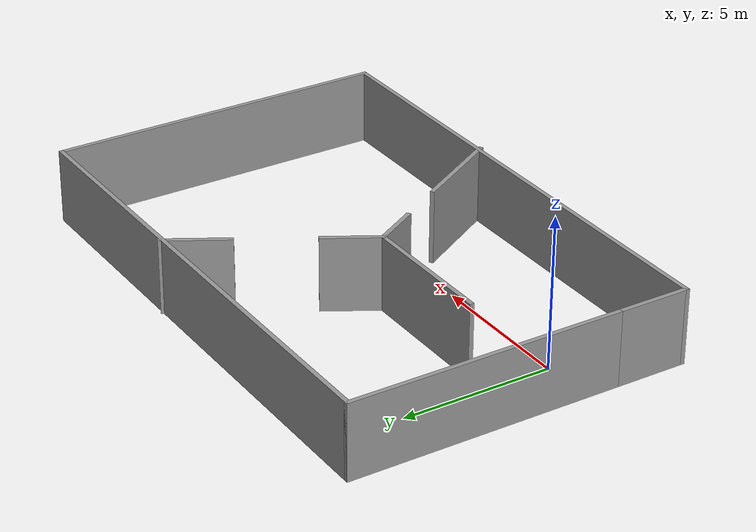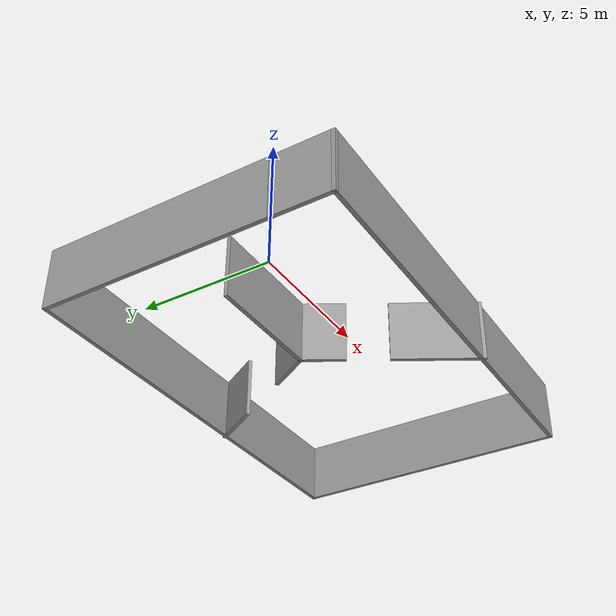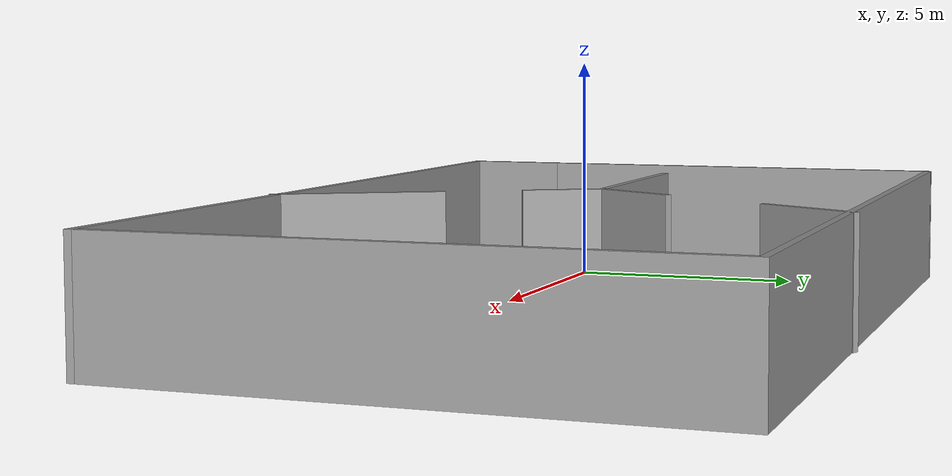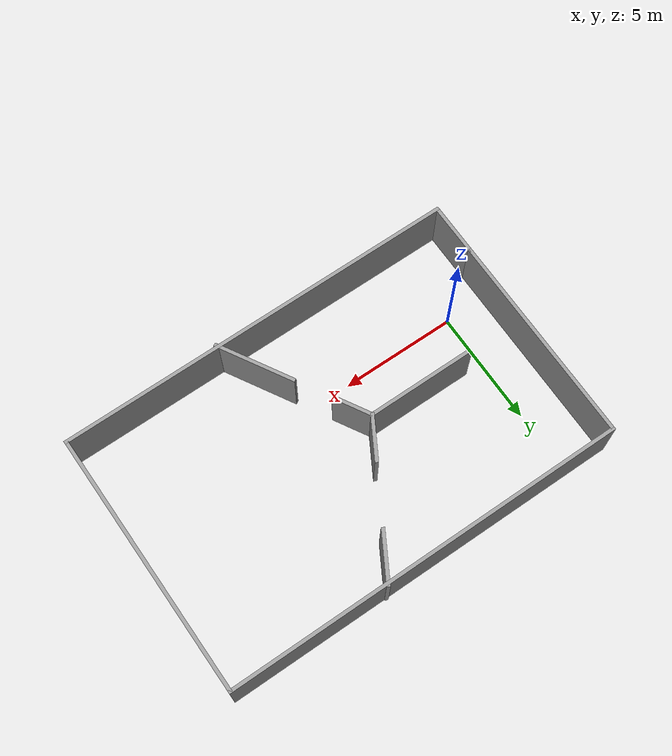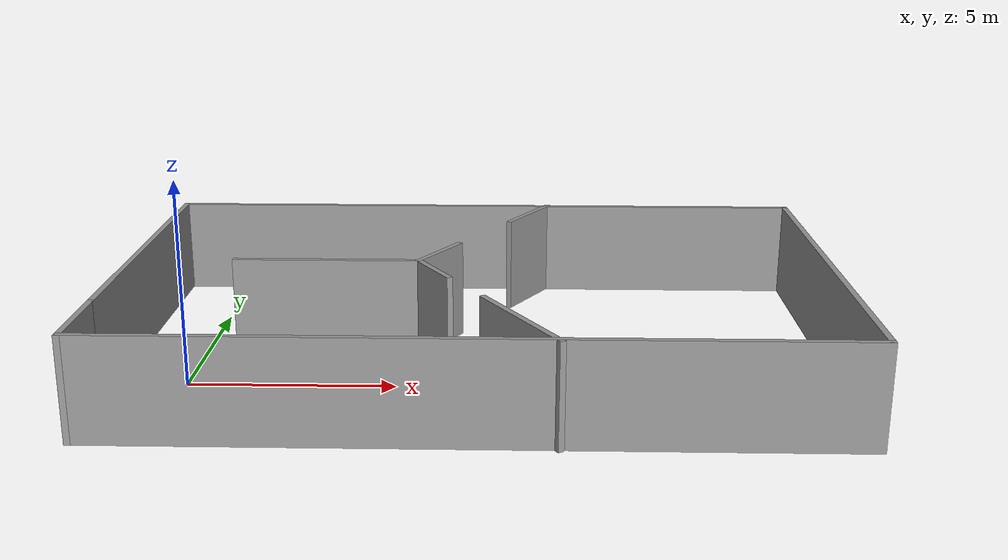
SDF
<?xml version='1.0'?>
<sdf version='1.6'>
  <model name='walls'>
    <pose frame=''>6.91274 2.20255 0 0 -0 0</pose>
    <link name='Wall_0'>
      <collision name='Wall_0_Collision'>
        <geometry>
          <box>
            <size>9.25 0.15 2.5</size>
          </box>
        </geometry>
        <pose frame=''>0 0 1.25 0 -0 0</pose>
      </collision>
      <visual name='Wall_0_Visual'>
        <pose frame=''>0 0 1.25 0 -0 0</pose>
        <geometry>
          <box>
            <size>9.25 0.15 2.5</size>
          </box>
        </geometry>
        <material>
          <script>
            <uri>file://media/materials/scripts/gazebo.material</uri>
            <name>Gazebo/Grey</name>
          </script>
          <ambient>1 1 1 1</ambient>
        </material>
        <meta>
          <layer>0</layer>
        </meta>
      </visual>
      <pose frame=''>-8.675 1.14311 0 0 -0 1.5708</pose>
    </link>
    <link name='Wall_1'>
      <collision name='Wall_1_Collision'>
        <geometry>
          <box>
            <size>17.5 0.15 2.5</size>
          </box>
        </geometry>
        <pose frame=''>0 0 1.25 0 -0 0</pose>
      </collision>
      <visual name='Wall_1_Visual'>
        <pose frame=''>0 0 1.25 0 -0 0</pose>
        <geometry>
          <box>
            <size>17.5 0.15 2.5</size>
          </box>
        </geometry>
        <material>
          <script>
            <uri>file://media/materials/scripts/gazebo.material</uri>
            <name>Gazebo/Grey</name>
          </script>
          <ambient>1 1 1 1</ambient>
        </material>
        <meta>
          <layer>0</layer>
        </meta>
      </visual>
      <pose frame=''>-0 5.69311 0 0 -0 0</pose>
    </link>
    <link name='Wall_11'>
      <collision name='Wall_11_Collision'>
        <geometry>
          <box>
            <size>1.75 0.15 2.5</size>
          </box>
        </geometry>
        <pose frame=''>0 0 1.25 0 -0 0</pose>
      </collision>
      <visual name='Wall_11_Visual'>
        <pose frame=''>0 0 1.25 0 -0 0</pose>
        <geometry>
          <box>
            <size>1.75 0.15 2.5</size>
          </box>
        </geometry>
        <material>
          <script>
            <uri>file://media/materials/scripts/gazebo.material</uri>
            <name>Gazebo/Grey</name>
          </script>
          <ambient>1 1 1 1</ambient>
        </material>
        <meta>
          <layer>0</layer>
        </meta>
      </visual>
      <pose frame=''>-1.08819 -0.668295 0 0 -0 -1.0472</pose>
    </link>
    <link name='Wall_17'>
      <collision name='Wall_17_Collision'>
        <geometry>
          <box>
            <size>3.5 0.15 2.5</size>
          </box>
        </geometry>
        <pose frame=''>0 0 1.25 0 -0 0</pose>
      </collision>
      <visual name='Wall_17_Visual'>
        <pose frame=''>0 0 1.25 0 -0 0</pose>
        <geometry>
          <box>
            <size>3.5 0.15 2.5</size>
          </box>
        </geometry>
        <material>
          <script>
            <uri>file://media/materials/scripts/gazebo.material</uri>
            <name>Gazebo/Grey</name>
          </script>
          <ambient>1 1 1 1</ambient>
        </material>
        <meta>
          <layer>0</layer>
        </meta>
      </visual>
      <pose frame=''>1.0238 -4.30255 0 0 -0 -1.0472</pose>
    </link>
    <link name='Wall_2'>
      <collision name='Wall_2_Collision'>
        <geometry>
          <box>
            <size>11.5 0.15 2.5</size>
          </box>
        </geometry>
        <pose frame=''>0 0 1.25 0 -0 0</pose>
      </collision>
      <visual name='Wall_2_Visual'>
        <pose frame=''>0 0 1.25 0 -0 0</pose>
        <geometry>
          <box>
            <size>11.5 0.15 2.5</size>
          </box>
        </geometry>
        <material>
          <script>
            <uri>file://media/materials/scripts/gazebo.material</uri>
            <name>Gazebo/Grey</name>
          </script>
          <ambient>1 1 1 1</ambient>
        </material>
        <meta>
          <layer>0</layer>
        </meta>
      </visual>
      <pose frame=''>8.675 0.018105 0 0 -0 -1.5708</pose>
    </link>
    <link name='Wall_3'>
      <collision name='Wall_3_Collision'>
        <geometry>
          <box>
            <size>17.5 0.15 2.5</size>
          </box>
        </geometry>
        <pose frame=''>0 0 1.25 0 -0 0</pose>
      </collision>
      <visual name='Wall_3_Visual'>
        <pose frame=''>0 0 1.25 0 -0 0</pose>
        <geometry>
          <box>
            <size>17.5 0.15 2.5</size>
          </box>
        </geometry>
        <material>
          <script>
            <uri>file://media/materials/scripts/gazebo.material</uri>
            <name>Gazebo/Grey</name>
          </script>
          <ambient>1 1 1 1</ambient>
        </material>
        <meta>
          <layer>0</layer>
        </meta>
      </visual>
      <pose frame=''>-0 -5.65689 0 0 -0 3.14159</pose>
    </link>
    <link name='Wall_4'>
      <collision name='Wall_4_Collision'>
        <geometry>
          <box>
            <size>2.4 0.15 2.5</size>
          </box>
        </geometry>
        <pose frame=''>0 0 1.25 0 -0 0</pose>
      </collision>
      <visual name='Wall_4_Visual'>
        <pose frame=''>0 0 1.25 0 -0 0</pose>
        <geometry>
          <box>
            <size>2.4 0.15 2.5</size>
          </box>
        </geometry>
        <material>
          <script>
            <uri>file://media/materials/scripts/gazebo.material</uri>
            <name>Gazebo/Grey</name>
          </script>
          <ambient>1 1 1 1</ambient>
        </material>
        <meta>
          <layer>0</layer>
        </meta>
      </visual>
      <pose frame=''>-8.675 -4.53189 0 0 -0 1.5708</pose>
    </link>
    <link name='Wall_6'>
      <collision name='Wall_6_Collision'>
        <geometry>
          <box>
            <size>2.25 0.15 2.5</size>
          </box>
        </geometry>
        <pose frame=''>0 0 1.25 0 -0 0</pose>
      </collision>
      <visual name='Wall_6_Visual'>
        <pose frame=''>0 0 1.25 0 -0 0</pose>
        <geometry>
          <box>
            <size>2.25 0.15 2.5</size>
          </box>
        </geometry>
        <material>
          <script>
            <uri>file://media/materials/scripts/gazebo.material</uri>
            <name>Gazebo/Grey</name>
          </script>
          <ambient>1 1 1 1</ambient>
        </material>
        <meta>
          <layer>0</layer>
        </meta>
      </visual>
      <pose frame=''>1.29869 4.84382 0 0 -0 -2.0944</pose>
    </link>
    <link name='Wall_8'>
      <collision name='Wall_8_Collision'>
        <geometry>
          <box>
            <size>2 0.15 2.5</size>
          </box>
        </geometry>
        <pose frame=''>0 0 1.25 0 -0 0</pose>
      </collision>
      <visual name='Wall_8_Visual'>
        <pose frame=''>0 0 1.25 0 -0 0</pose>
        <geometry>
          <box>
            <size>2 0.15 2.5</size>
          </box>
        </geometry>
        <material>
          <script>
            <uri>file://media/materials/scripts/gazebo.material</uri>
            <name>Gazebo/Grey</name>
          </script>
          <ambient>1 1 1 1</ambient>
        </material>
        <meta>
          <layer>0</layer>
        </meta>
      </visual>
      <pose frame=''>-1.02569 0.825599 0 0 -0 -2.0944</pose>
    </link>
    <link name='Wall_9'>
      <collision name='Wall_9_Collision'>
        <geometry>
          <box>
            <size>4.75 0.15 2.5</size>
          </box>
        </geometry>
        <pose frame=''>0 0 1.25 0 -0 0</pose>
      </collision>
      <visual name='Wall_9_Visual'>
        <pose frame=''>0 0 1.25 0 -0 0</pose>
        <geometry>
          <box>
            <size>4.75 0.15 2.5</size>
          </box>
        </geometry>
        <material>
          <script>
            <uri>file://media/materials/scripts/gazebo.material</uri>
            <name>Gazebo/Grey</name>
          </script>
          <ambient>1 1 1 1</ambient>
        </material>
        <meta>
          <layer>0</layer>
        </meta>
      </visual>
      <pose frame=''>-3.78819 0.024525 0 0 -0 3.14159</pose>
    </link>
    <static>1</static>
  </model>
</sdf>
